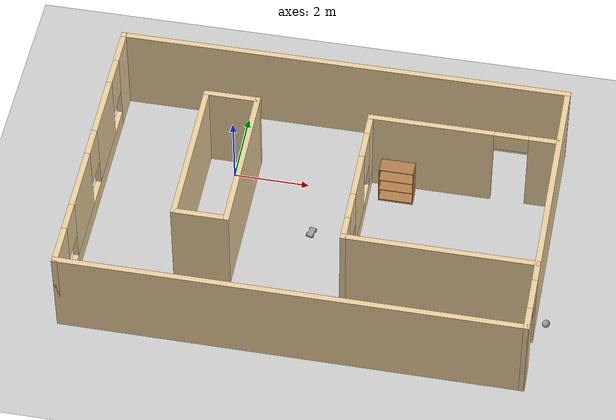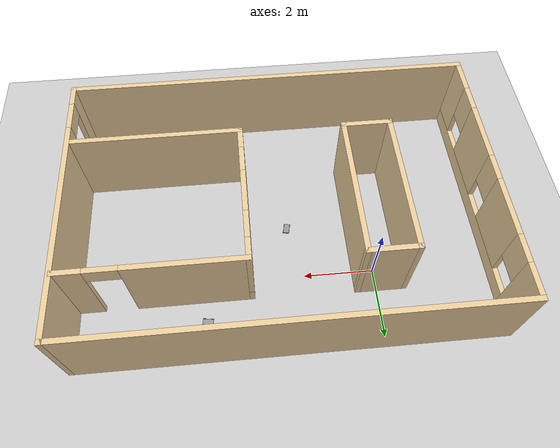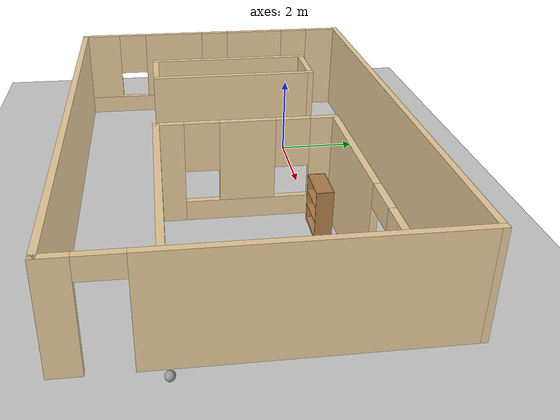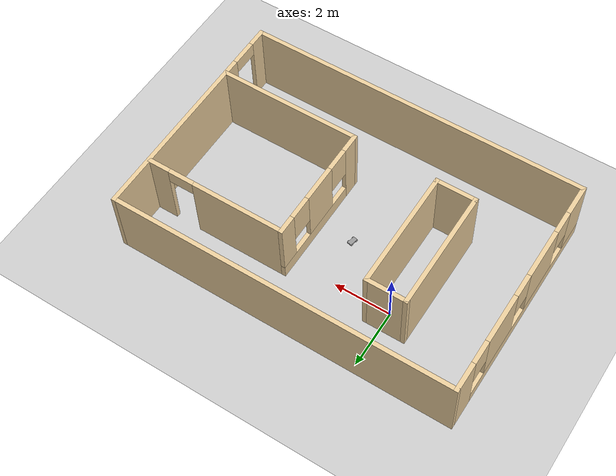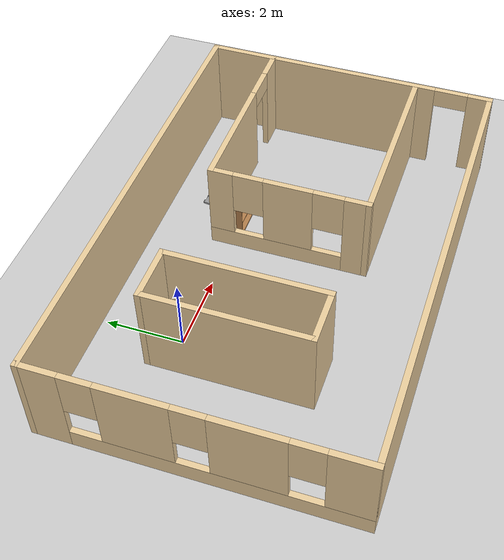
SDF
<sdf version="1.6">
 <world name="default">
  <model name="ground_plane">
   <static>1</static>
   <link name="link">
    <collision name="collision">
     <geometry><plane><normal>0 0 1</normal><size>100 100</size></plane></geometry>
     <surface><friction><ode><mu>100</mu><mu2>50</mu2></ode></friction></surface>
    </collision>
    <visual name="visual">
     <cast_shadows>0</cast_shadows>
     <geometry><plane><normal>0 0 1</normal><size>100 100</size></plane></geometry>
     <material>
      <script><uri>file://media/materials/scripts/gazebo.material</uri><name>Gazebo/Grey</name></script>
     </material>
    </visual>
   </link>
  </model>
  <model name="Shop_Floor">
   <pose>2.53883 -1.71757 0 0 -0 0</pose>
   <link name="Wall_0">
    <pose>-5.925 0 0 0 0 -1.5708</pose>
    <visual name="Wall_0_Visual_0">
     <pose>-3.48792 0 1.25 0 -0 0</pose>
     <geometry><box><size>1.02416 0.15 2.5</size></box></geometry>
     <material>
      <script><uri>file://media/materials/scripts/gazebo.material</uri><name>Gazebo/Grey</name></script>
      <ambient>0.921569 0.807843 0.615686 1</ambient>
     </material>
     <meta><layer>0</layer></meta>
    </visual>
    <collision name="Wall_0_Collision_0">
     <geometry><box><size>1.02416 0.15 2.5</size></box></geometry>
     <pose>-3.48792 0 1.25 0 -0 0</pose>
    </collision>
    <visual name="Wall_0_Visual_1">
     <pose>0.512079 0 0.25 0 -0 0</pose>
     <geometry><box><size>6.97584 0.15 0.5</size></box></geometry>
     <material>
      <script><uri>file://media/materials/scripts/gazebo.material</uri><name>Gazebo/Grey</name></script>
      <ambient>0.921569 0.807843 0.615686 1</ambient>
     </material>
     <meta><layer>0</layer></meta>
    </visual>
    <collision name="Wall_0_Collision_1">
     <geometry><box><size>6.97584 0.15 0.5</size></box></geometry>
     <pose>0.512079 0 0.25 0 -0 0</pose>
    </collision>
    <visual name="Wall_0_Visual_2">
     <pose>-1.31522 0 1.5 0 -0 0</pose>
     <geometry><box><size>1.72124 0.15 2</size></box></geometry>
     <material>
      <script><uri>file://media/materials/scripts/gazebo.material</uri><name>Gazebo/Grey</name></script>
      <ambient>0.921569 0.807843 0.615686 1</ambient>
     </material>
     <meta><layer>0</layer></meta>
    </visual>
    <collision name="Wall_0_Collision_2">
     <geometry><box><size>1.72124 0.15 2</size></box></geometry>
     <pose>-1.31522 0 1.5 0 -0 0</pose>
    </collision>
    <visual name="Wall_0_Visual_3">
     <pose>1.22048 0 1.5 0 -0 0</pose>
     <geometry><box><size>1.75017 0.15 2</size></box></geometry>
     <material>
      <script><uri>file://media/materials/scripts/gazebo.material</uri><name>Gazebo/Grey</name></script>
      <ambient>0.921569 0.807843 0.615686 1</ambient>
     </material>
     <meta><layer>0</layer></meta>
    </visual>
    <collision name="Wall_0_Collision_3">
     <geometry><box><size>1.75017 0.15 2</size></box></geometry>
     <pose>1.22048 0 1.5 0 -0 0</pose>
    </collision>
    <visual name="Wall_0_Visual_4">
     <pose>3.44778 0 1.5 0 -0 0</pose>
     <geometry><box><size>1.10444 0.15 2</size></box></geometry>
     <material>
      <script><uri>file://media/materials/scripts/gazebo.material</uri><name>Gazebo/Grey</name></script>
      <ambient>0.921569 0.807843 0.615686 1</ambient>
     </material>
     <meta><layer>0</layer></meta>
    </visual>
    <collision name="Wall_0_Collision_4">
     <geometry><box><size>1.10444 0.15 2</size></box></geometry>
     <pose>3.44778 0 1.5 0 -0 0</pose>
    </collision>
    <visual name="Wall_0_Visual_5">
     <pose>-2.57584 0 1.9 0 -0 0</pose>
     <geometry><box><size>0.8 0.15 1.2</size></box></geometry>
     <material>
      <script><uri>file://media/materials/scripts/gazebo.material</uri><name>Gazebo/Grey</name></script>
      <ambient>0.921569 0.807843 0.615686 1</ambient>
     </material>
     <meta><layer>0</layer></meta>
    </visual>
    <collision name="Wall_0_Collision_5">
     <geometry><box><size>0.8 0.15 1.2</size></box></geometry>
     <pose>-2.57584 0 1.9 0 -0 0</pose>
    </collision>
    <visual name="Wall_0_Visual_6">
     <pose>-0.054606 0 1.9 0 -0 0</pose>
     <geometry><box><size>0.8 0.15 1.2</size></box></geometry>
     <material>
      <script><uri>file://media/materials/scripts/gazebo.material</uri><name>Gazebo/Grey</name></script>
      <ambient>0.921569 0.807843 0.615686 1</ambient>
     </material>
     <meta><layer>0</layer></meta>
    </visual>
    <collision name="Wall_0_Collision_6">
     <geometry><box><size>0.8 0.15 1.2</size></box></geometry>
     <pose>-0.054606 0 1.9 0 -0 0</pose>
    </collision>
    <visual name="Wall_0_Visual_7">
     <pose>2.49556 0 1.9 0 -0 0</pose>
     <geometry><box><size>0.8 0.15 1.2</size></box></geometry>
     <material>
      <script><uri>file://media/materials/scripts/gazebo.material</uri><name>Gazebo/Grey</name></script>
      <ambient>0.921569 0.807843 0.615686 1</ambient>
     </material>
     <meta><layer>0</layer></meta>
    </visual>
    <collision name="Wall_0_Collision_7">
     <geometry><box><size>0.8 0.15 1.2</size></box></geometry>
     <pose>2.49556 0 1.9 0 -0 0</pose>
    </collision>
   </link>
   <link name="Wall_1">
    <collision name="Wall_1_Collision">
     <geometry><box><size>12 0.15 2.5</size></box></geometry>
     <pose>0 0 1.25 0 -0 0</pose>
    </collision>
    <visual name="Wall_1_Visual">
     <pose>0 0 1.25 0 -0 0</pose>
     <geometry><box><size>12 0.15 2.5</size></box></geometry>
     <material>
      <script><uri>file://media/materials/scripts/gazebo.material</uri><name>Gazebo/Grey</name></script>
      <ambient>0.921569 0.807843 0.615686 1</ambient>
     </material>
     <meta><layer>0</layer></meta>
    </visual>
    <pose>0 -3.925 0 0 -0 0</pose>
   </link>
   <link name="Wall_2">
    <pose>5.925 0 0 0 -0 1.5708</pose>
    <visual name="Wall_2_Visual_0">
     <pose>-3.66386 0 1.25 0 -0 0</pose>
     <geometry><box><size>0.672281 0.15 2.5</size></box></geometry>
     <material>
      <script><uri>file://media/materials/scripts/gazebo.material</uri><name>Gazebo/Grey</name></script>
      <ambient>0.921569 0.807843 0.615686 1</ambient>
     </material>
     <meta><layer>0</layer></meta>
    </visual>
    <collision name="Wall_2_Collision_0">
     <geometry><box><size>0.672281 0.15 2.5</size></box></geometry>
     <pose>-3.66386 0 1.25 0 -0 0</pose>
    </collision>
    <visual name="Wall_2_Visual_1">
     <pose>0.786141 0 1.25 0 -0 0</pose>
     <geometry><box><size>6.42772 0.15 2.5</size></box></geometry>
     <material>
      <script><uri>file://media/materials/scripts/gazebo.material</uri><name>Gazebo/Grey</name></script>
      <ambient>0.921569 0.807843 0.615686 1</ambient>
     </material>
     <meta><layer>0</layer></meta>
    </visual>
    <collision name="Wall_2_Collision_1">
     <geometry><box><size>6.42772 0.15 2.5</size></box></geometry>
     <pose>0.786141 0 1.25 0 -0 0</pose>
    </collision>
    <visual name="Wall_2_Visual_2">
     <pose>-2.87772 0 2.25 0 -0 0</pose>
     <geometry><box><size>0.9 0.15 0.5</size></box></geometry>
     <material>
      <script><uri>file://media/materials/scripts/gazebo.material</uri><name>Gazebo/Grey</name></script>
      <ambient>0.921569 0.807843 0.615686 1</ambient>
     </material>
     <meta><layer>0</layer></meta>
    </visual>
    <collision name="Wall_2_Collision_2">
     <geometry><box><size>0.9 0.15 0.5</size></box></geometry>
     <pose>-2.87772 0 2.25 0 -0 0</pose>
    </collision>
   </link>
   <link name="Wall_20">
    <collision name="Wall_20_Collision">
     <geometry><box><size>4.25 0.15 2.5</size></box></geometry>
     <pose>0 0 1.25 0 -0 0</pose>
    </collision>
    <visual name="Wall_20_Visual">
     <pose>0 0 1.25 0 -0 0</pose>
     <geometry><box><size>4.25 0.15 2.5</size></box></geometry>
     <material>
      <script><uri>file://media/materials/scripts/gazebo.material</uri><name>Gazebo/Grey</name></script>
      <ambient>0.921569 0.807843 0.615686 1</ambient>
     </material>
     <meta><layer>0</layer></meta>
    </visual>
    <pose>-1.99427 0.226904 0 0 -0 1.5708</pose>
   </link>
   <link name="Wall_21">
    <collision name="Wall_21_Collision">
     <geometry><box><size>1.5 0.15 2.5</size></box></geometry>
     <pose>0 0 1.25 0 -0 0</pose>
    </collision>
    <visual name="Wall_21_Visual">
     <pose>0 0 1.25 0 -0 0</pose>
     <geometry><box><size>1.5 0.15 2.5</size></box></geometry>
     <material>
      <script><uri>file://media/materials/scripts/gazebo.material</uri><name>Gazebo/Grey</name></script>
      <ambient>0.921569 0.807843 0.615686 1</ambient>
     </material>
     <meta><layer>0</layer></meta>
    </visual>
    <pose>-2.66927 2.2769 0 0 -0 3.14159</pose>
   </link>
   <link name="Wall_22">
    <collision name="Wall_22_Collision">
     <geometry><box><size>4.25 0.15 2.5</size></box></geometry>
     <pose>0 0 1.25 0 -0 0</pose>
    </collision>
    <visual name="Wall_22_Visual">
     <pose>0 0 1.25 0 -0 0</pose>
     <geometry><box><size>4.25 0.15 2.5</size></box></geometry>
     <material>
      <script><uri>file://media/materials/scripts/gazebo.material</uri><name>Gazebo/Grey</name></script>
      <ambient>0.921569 0.807843 0.615686 1</ambient>
     </material>
     <meta><layer>0</layer></meta>
    </visual>
    <pose>-3.34427 0.226904 0 0 0 -1.5708</pose>
   </link>
   <link name="Wall_23">
    <collision name="Wall_23_Collision">
     <geometry><box><size>1.5 0.15 2.5</size></box></geometry>
     <pose>0 0 1.25 0 -0 0</pose>
    </collision>
    <visual name="Wall_23_Visual">
     <pose>0 0 1.25 0 -0 0</pose>
     <geometry><box><size>1.5 0.15 2.5</size></box></geometry>
     <material>
      <script><uri>file://media/materials/scripts/gazebo.material</uri><name>Gazebo/Grey</name></script>
      <ambient>0.921569 0.807843 0.615686 1</ambient>
     </material>
     <meta><layer>0</layer></meta>
    </visual>
    <pose>-2.66927 -1.8231 0 0 -0 0</pose>
   </link>
   <link name="Wall_25">
    <collision name="Wall_25_Collision">
     <geometry><box><size>5.04563 0.15 2.5</size></box></geometry>
     <pose>0 0 1.25 0 -0 0</pose>
    </collision>
    <visual name="Wall_25_Visual">
     <pose>0 0 1.25 0 -0 0</pose>
     <geometry><box><size>5.04563 0.15 2.5</size></box></geometry>
     <material>
      <script><uri>file://media/materials/scripts/gazebo.material</uri><name>Gazebo/Grey</name></script>
      <ambient>0.921569 0.807843 0.615686 1</ambient>
     </material>
     <meta><layer>0</layer></meta>
    </visual>
    <pose>3.45851 -1.89064 0 0 -0 3.14159</pose>
   </link>
   <link name="Wall_28">
    <pose>1.0107 0.159355 0 0 -0 1.5708</pose>
    <visual name="Wall_28_Visual_0">
     <pose>-1.77536 0 1.25 0 -0 0</pose>
     <geometry><box><size>0.699283 0.15 2.5</size></box></geometry>
     <material>
      <script><uri>file://media/materials/scripts/gazebo.material</uri><name>Gazebo/Grey</name></script>
      <ambient>0.921569 0.807843 0.615686 1</ambient>
     </material>
     <meta><layer>0</layer></meta>
    </visual>
    <collision name="Wall_28_Collision_0">
     <geometry><box><size>0.699283 0.15 2.5</size></box></geometry>
     <pose>-1.77536 0 1.25 0 -0 0</pose>
    </collision>
    <visual name="Wall_28_Visual_1">
     <pose>0.349641 0 0.25 0 -0 0</pose>
     <geometry><box><size>3.55072 0.15 0.5</size></box></geometry>
     <material>
      <script><uri>file://media/materials/scripts/gazebo.material</uri><name>Gazebo/Grey</name></script>
      <ambient>0.921569 0.807843 0.615686 1</ambient>
     </material>
     <meta><layer>0</layer></meta>
    </visual>
    <collision name="Wall_28_Collision_1">
     <geometry><box><size>3.55072 0.15 0.5</size></box></geometry>
     <pose>0.349641 0 0.25 0 -0 0</pose>
    </collision>
    <visual name="Wall_28_Visual_2">
     <pose>0.020189 0 1.5 0 -0 0</pose>
     <geometry><box><size>1.29181 0.15 2</size></box></geometry>
     <material>
      <script><uri>file://media/materials/scripts/gazebo.material</uri><name>Gazebo/Grey</name></script>
      <ambient>0.921569 0.807843 0.615686 1</ambient>
     </material>
     <meta><layer>0</layer></meta>
    </visual>
    <collision name="Wall_28_Collision_2">
     <geometry><box><size>1.29181 0.15 2</size></box></geometry>
     <pose>0.020189 0 1.5 0 -0 0</pose>
    </collision>
    <visual name="Wall_28_Visual_3">
     <pose>1.79555 0 1.5 0 -0 0</pose>
     <geometry><box><size>0.658906 0.15 2</size></box></geometry>
     <material>
      <script><uri>file://media/materials/scripts/gazebo.material</uri><name>Gazebo/Grey</name></script>
      <ambient>0.921569 0.807843 0.615686 1</ambient>
     </material>
     <meta><layer>0</layer></meta>
    </visual>
    <collision name="Wall_28_Collision_3">
     <geometry><box><size>0.658906 0.15 2</size></box></geometry>
     <pose>1.79555 0 1.5 0 -0 0</pose>
    </collision>
    <visual name="Wall_28_Visual_4">
     <pose>-1.02572 0 1.9 0 -0 0</pose>
     <geometry><box><size>0.8 0.15 1.2</size></box></geometry>
     <material>
      <script><uri>file://media/materials/scripts/gazebo.material</uri><name>Gazebo/Grey</name></script>
      <ambient>0.921569 0.807843 0.615686 1</ambient>
     </material>
     <meta><layer>0</layer></meta>
    </visual>
    <collision name="Wall_28_Collision_4">
     <geometry><box><size>0.8 0.15 1.2</size></box></geometry>
     <pose>-1.02572 0 1.9 0 -0 0</pose>
    </collision>
    <visual name="Wall_28_Visual_5">
     <pose>1.06609 0 1.9 0 -0 0</pose>
     <geometry><box><size>0.8 0.15 1.2</size></box></geometry>
     <material>
      <script><uri>file://media/materials/scripts/gazebo.material</uri><name>Gazebo/Grey</name></script>
      <ambient>0.921569 0.807843 0.615686 1</ambient>
     </material>
     <meta><layer>0</layer></meta>
    </visual>
    <collision name="Wall_28_Collision_5">
     <geometry><box><size>0.8 0.15 1.2</size></box></geometry>
     <pose>1.06609 0 1.9 0 -0 0</pose>
    </collision>
   </link>
   <link name="Wall_29">
    <pose>3.4357 2.20935 0 0 -0 0</pose>
    <visual name="Wall_29_Visual_0">
     <pose>-0.847857 0 1.25 0 -0 0</pose>
     <geometry><box><size>3.30429 0.15 2.5</size></box></geometry>
     <material>
      <script><uri>file://media/materials/scripts/gazebo.material</uri><name>Gazebo/Grey</name></script>
      <ambient>0.921569 0.807843 0.615686 1</ambient>
     </material>
     <meta><layer>0</layer></meta>
    </visual>
    <collision name="Wall_29_Collision_0">
     <geometry><box><size>3.30429 0.15 2.5</size></box></geometry>
     <pose>-0.847857 0 1.25 0 -0 0</pose>
    </collision>
    <visual name="Wall_29_Visual_1">
     <pose>2.10214 0 1.25 0 -0 0</pose>
     <geometry><box><size>0.795714 0.15 2.5</size></box></geometry>
     <material>
      <script><uri>file://media/materials/scripts/gazebo.material</uri><name>Gazebo/Grey</name></script>
      <ambient>0.921569 0.807843 0.615686 1</ambient>
     </material>
     <meta><layer>0</layer></meta>
    </visual>
    <collision name="Wall_29_Collision_1">
     <geometry><box><size>0.795714 0.15 2.5</size></box></geometry>
     <pose>2.10214 0 1.25 0 -0 0</pose>
    </collision>
    <visual name="Wall_29_Visual_2">
     <pose>1.25429 0 2.25 0 -0 0</pose>
     <geometry><box><size>0.9 0.15 0.5</size></box></geometry>
     <material>
      <script><uri>file://media/materials/scripts/gazebo.material</uri><name>Gazebo/Grey</name></script>
      <ambient>0.921569 0.807843 0.615686 1</ambient>
     </material>
     <meta><layer>0</layer></meta>
    </visual>
    <collision name="Wall_29_Collision_2">
     <geometry><box><size>0.9 0.15 0.5</size></box></geometry>
     <pose>1.25429 0 2.25 0 -0 0</pose>
    </collision>
   </link>
   <link name="Wall_3">
    <collision name="Wall_3_Collision">
     <geometry><box><size>12 0.15 2.5</size></box></geometry>
     <pose>0 0 1.25 0 -0 0</pose>
    </collision>
    <visual name="Wall_3_Visual">
     <pose>0 0 1.25 0 -0 0</pose>
     <geometry><box><size>12 0.15 2.5</size></box></geometry>
     <material>
      <script><uri>file://media/materials/scripts/gazebo.material</uri><name>Gazebo/Grey</name></script>
      <ambient>0.921569 0.807843 0.615686 1</ambient>
     </material>
     <meta><layer>0</layer></meta>
    </visual>
    <pose>0 3.925 0 0 -0 3.14159</pose>
   </link>
   <static>1</static>
  </model>
  <model name="Robosweeper_clone">
   <link name="link_0">
    <pose>-0 0 0 0 0.05 0</pose>
    <inertial>
     <mass>1</mass>
     <inertia>
      <ixx>0.166667</ixx>
      <ixy>0</ixy>
      <ixz>0</ixz>
      <iyy>0.166667</iyy>
      <iyz>0</iyz>
      <izz>0.166667</izz>
     </inertia>
    </inertial>
    <visual name="visual">
     <geometry><box><size>0.3 0.16 0.05</size></box></geometry>
     <material>
      <lighting>1</lighting>
      <script><uri>file://media/materials/scripts/gazebo.material</uri><name>Gazebo/Grey</name></script>
      <ambient>0.3 0.3 0.3 1</ambient>
      <diffuse>0.7 0.7 0.7 1</diffuse>
      <specular>0.01 0.01 0.01 1</specular>
      <emissive>0 0 0 1</emissive>
      <shader type="vertex"><normal_map>__default__</normal_map></shader>
     </material>
    </visual>
    <collision name="collision">
     <geometry><box><size>0.3 0.16 0.05</size></box></geometry>
     <surface>
      <friction>
       <ode><mu>1</mu><mu2>1</mu2><fdir1>0 0 0</fdir1><slip1>0</slip1><slip2>0</slip2></ode>
       <torsional>
        <coefficient>1</coefficient>
        <patch_radius>0</patch_radius>
        <surface_radius>0</surface_radius>
        <use_patch_radius>1</use_patch_radius>
        <ode><slip>0</slip></ode>
       </torsional>
      </friction>
      <bounce><restitution_coefficient>0</restitution_coefficient><threshold>1e+06</threshold></bounce>
      <contact>
       <collide_without_contact>0</collide_without_contact>
       <collide_without_contact_bitmask>1</collide_without_contact_bitmask>
       <collide_bitmask>1</collide_bitmask>
       <ode>
        <soft_cfm>0</soft_cfm>
        <soft_erp>0.2</soft_erp>
        <kp>1e+13</kp>
        <kd>1</kd>
        <max_vel>0.01</max_vel>
        <min_depth>0</min_depth>
       </ode>
       <bullet>
        <split_impulse>1</split_impulse>
        <split_impulse_penetration_threshold>-0.01</split_impulse_penetration_threshold>
        <soft_cfm>0</soft_cfm>
        <soft_erp>0.2</soft_erp>
        <kp>1e+13</kp>
        <kd>1</kd>
       </bullet>
      </contact>
     </surface>
    </collision>
   </link>
   <link name="link_1">
    <pose>-0.1 0.086203 0 1.5707 -0 0</pose>
    <inertial>
     <mass>1</mass>
     <inertia><ixx>0.145833</ixx><ixy>0</ixy><ixz>0</ixz><iyy>0.145833</iyy><iyz>0</iyz><izz>0.125</izz></inertia>
    </inertial>
    <visual name="visual">
     <geometry><cylinder><radius>0.05</radius><length>0.0125</length></cylinder></geometry>
     <material>
      <lighting>1</lighting>
      <script><uri>file://media/materials/scripts/gazebo.material</uri><name>Gazebo/Grey</name></script>
      <ambient>0.3 0.3 0.3 1</ambient>
      <diffuse>0.7 0.7 0.7 1</diffuse>
      <specular>0.01 0.01 0.01 1</specular>
      <emissive>0 0 0 1</emissive>
      <shader type="vertex"><normal_map>__default__</normal_map></shader>
     </material>
    </visual>
    <collision name="collision">
     <geometry><cylinder><radius>0.05</radius><length>0.0125</length></cylinder></geometry>
     <surface>
      <friction>
       <ode><mu>1</mu><mu2>1</mu2><fdir1>0 0 0</fdir1><slip1>0</slip1><slip2>0</slip2></ode>
       <torsional>
        <coefficient>1</coefficient>
        <patch_radius>0</patch_radius>
        <surface_radius>0</surface_radius>
        <use_patch_radius>1</use_patch_radius>
        <ode><slip>0</slip></ode>
       </torsional>
      </friction>
      <bounce><restitution_coefficient>0</restitution_coefficient><threshold>1e+06</threshold></bounce>
      <contact>
       <collide_without_contact>0</collide_without_contact>
       <collide_without_contact_bitmask>1</collide_without_contact_bitmask>
       <collide_bitmask>1</collide_bitmask>
       <ode>
        <soft_cfm>0</soft_cfm>
        <soft_erp>0.2</soft_erp>
        <kp>1e+13</kp>
        <kd>1</kd>
        <max_vel>0.01</max_vel>
        <min_depth>0</min_depth>
       </ode>
       <bullet>
        <split_impulse>1</split_impulse>
        <split_impulse_penetration_threshold>-0.01</split_impulse_penetration_threshold>
        <soft_cfm>0</soft_cfm>
        <soft_erp>0.2</soft_erp>
        <kp>1e+13</kp>
        <kd>1</kd>
       </bullet>
      </contact>
     </surface>
    </collision>
   </link>
   <link name="link_1_clone">
    <pose>0.1 0.086203 0 1.5707 -0 0</pose>
    <inertial>
     <mass>1</mass>
     <inertia><ixx>0.145833</ixx><ixy>0</ixy><ixz>0</ixz><iyy>0.145833</iyy><iyz>0</iyz><izz>0.125</izz></inertia>
    </inertial>
    <visual name="visual">
     <geometry><cylinder><radius>0.05</radius><length>0.0125</length></cylinder></geometry>
     <material>
      <lighting>1</lighting>
      <script><uri>file://media/materials/scripts/gazebo.material</uri><name>Gazebo/Grey</name></script>
      <ambient>0.3 0.3 0.3 1</ambient>
      <diffuse>0.7 0.7 0.7 1</diffuse>
      <specular>0.01 0.01 0.01 1</specular>
      <emissive>0 0 0 1</emissive>
      <shader type="vertex"><normal_map>__default__</normal_map></shader>
     </material>
    </visual>
    <collision name="collision">
     <geometry><cylinder><radius>0.05</radius><length>0.0125</length></cylinder></geometry>
     <surface>
      <friction>
       <ode><mu>1</mu><mu2>1</mu2><fdir1>0 0 0</fdir1><slip1>0</slip1><slip2>0</slip2></ode>
       <torsional>
        <coefficient>1</coefficient>
        <patch_radius>0</patch_radius>
        <surface_radius>0</surface_radius>
        <use_patch_radius>1</use_patch_radius>
        <ode><slip>0</slip></ode>
       </torsional>
      </friction>
      <bounce><restitution_coefficient>0</restitution_coefficient><threshold>1e+06</threshold></bounce>
      <contact>
       <collide_without_contact>0</collide_without_contact>
       <collide_without_contact_bitmask>1</collide_without_contact_bitmask>
       <collide_bitmask>1</collide_bitmask>
       <ode>
        <soft_cfm>0</soft_cfm>
        <soft_erp>0.2</soft_erp>
        <kp>1e+13</kp>
        <kd>1</kd>
        <max_vel>0.01</max_vel>
        <min_depth>0</min_depth>
       </ode>
       <bullet>
        <split_impulse>1</split_impulse>
        <split_impulse_penetration_threshold>-0.01</split_impulse_penetration_threshold>
        <soft_cfm>0</soft_cfm>
        <soft_erp>0.2</soft_erp>
        <kp>1e+13</kp>
        <kd>1</kd>
       </bullet>
      </contact>
     </surface>
    </collision>
   </link>
   <link name="link_1_clone_0">
    <pose>-0.1 -0.086297 0 1.5707 -0 0</pose>
    <inertial>
     <mass>1</mass>
     <inertia><ixx>0.145833</ixx><ixy>0</ixy><ixz>0</ixz><iyy>0.145833</iyy><iyz>0</iyz><izz>0.125</izz></inertia>
    </inertial>
    <visual name="visual">
     <geometry><cylinder><radius>0.05</radius><length>0.0125</length></cylinder></geometry>
     <material>
      <lighting>1</lighting>
      <script><uri>file://media/materials/scripts/gazebo.material</uri><name>Gazebo/Grey</name></script>
      <ambient>0.3 0.3 0.3 1</ambient>
      <diffuse>0.7 0.7 0.7 1</diffuse>
      <specular>0.01 0.01 0.01 1</specular>
      <emissive>0 0 0 1</emissive>
      <shader type="vertex"><normal_map>__default__</normal_map></shader>
     </material>
    </visual>
    <collision name="collision">
     <geometry><cylinder><radius>0.05</radius><length>0.0125</length></cylinder></geometry>
     <surface>
      <friction>
       <ode><mu>1</mu><mu2>1</mu2><fdir1>0 0 0</fdir1><slip1>0</slip1><slip2>0</slip2></ode>
       <torsional>
        <coefficient>1</coefficient>
        <patch_radius>0</patch_radius>
        <surface_radius>0</surface_radius>
        <use_patch_radius>1</use_patch_radius>
        <ode><slip>0</slip></ode>
       </torsional>
      </friction>
      <bounce><restitution_coefficient>0</restitution_coefficient><threshold>1e+06</threshold></bounce>
      <contact>
       <collide_without_contact>0</collide_without_contact>
       <collide_without_contact_bitmask>1</collide_without_contact_bitmask>
       <collide_bitmask>1</collide_bitmask>
       <ode>
        <soft_cfm>0</soft_cfm>
        <soft_erp>0.2</soft_erp>
        <kp>1e+13</kp>
        <kd>1</kd>
        <max_vel>0.01</max_vel>
        <min_depth>0</min_depth>
       </ode>
       <bullet>
        <split_impulse>1</split_impulse>
        <split_impulse_penetration_threshold>-0.01</split_impulse_penetration_threshold>
        <soft_cfm>0</soft_cfm>
        <soft_erp>0.2</soft_erp>
        <kp>1e+13</kp>
        <kd>1</kd>
       </bullet>
      </contact>
     </surface>
    </collision>
   </link>
   <link name="link_1_clone_1">
    <pose>0.1 -0.086297 0 1.5707 -0 0</pose>
    <inertial>
     <mass>1</mass>
     <inertia><ixx>0.145833</ixx><ixy>0</ixy><ixz>0</ixz><iyy>0.145833</iyy><iyz>0</iyz><izz>0.125</izz></inertia>
    </inertial>
    <visual name="visual">
     <geometry><cylinder><radius>0.05</radius><length>0.0125</length></cylinder></geometry>
     <material>
      <lighting>1</lighting>
      <script><uri>file://media/materials/scripts/gazebo.material</uri><name>Gazebo/Grey</name></script>
      <ambient>0.3 0.3 0.3 1</ambient>
      <diffuse>0.7 0.7 0.7 1</diffuse>
      <specular>0.01 0.01 0.01 1</specular>
      <emissive>0 0 0 1</emissive>
      <shader type="vertex"><normal_map>__default__</normal_map></shader>
     </material>
    </visual>
    <collision name="collision">
     <geometry><cylinder><radius>0.05</radius><length>0.0125</length></cylinder></geometry>
     <surface>
      <friction>
       <ode><mu>1</mu><mu2>1</mu2><fdir1>0 0 0</fdir1><slip1>0</slip1><slip2>0</slip2></ode>
       <torsional>
        <coefficient>1</coefficient>
        <patch_radius>0</patch_radius>
        <surface_radius>0</surface_radius>
        <use_patch_radius>1</use_patch_radius>
        <ode><slip>0</slip></ode>
       </torsional>
      </friction>
      <bounce><restitution_coefficient>0</restitution_coefficient><threshold>1e+06</threshold></bounce>
      <contact>
       <collide_without_contact>0</collide_without_contact>
       <collide_without_contact_bitmask>1</collide_without_contact_bitmask>
       <collide_bitmask>1</collide_bitmask>
       <ode>
        <soft_cfm>0</soft_cfm>
        <soft_erp>0.2</soft_erp>
        <kp>1e+13</kp>
        <kd>1</kd>
        <max_vel>0.01</max_vel>
        <min_depth>0</min_depth>
       </ode>
       <bullet>
        <split_impulse>1</split_impulse>
        <split_impulse_penetration_threshold>-0.01</split_impulse_penetration_threshold>
        <soft_cfm>0</soft_cfm>
        <soft_erp>0.2</soft_erp>
        <kp>1e+13</kp>
        <kd>1</kd>
       </bullet>
      </contact>
     </surface>
    </collision>
   </link>
   <joint name="link_0_JOINT_0" type="revolute">
    <parent>link_0</parent>
    <child>link_1</child>
    <axis>
     <xyz>0 0 1</xyz>
     <use_parent_model_frame>0</use_parent_model_frame>
     <limit>
      <lower>-1.79769e+308</lower>
      <upper>1.79769e+308</upper>
      <effort>-1</effort>
      <velocity>-1</velocity>
     </limit>
     <dynamics>
      <spring_reference>0</spring_reference>
      <spring_stiffness>0</spring_stiffness>
      <damping>0</damping>
     </dynamics>
    </axis>
    <physics>
     <ode><limit><cfm>0</cfm><erp>0.2</erp></limit><suspension><cfm>0</cfm><erp>0.2</erp></suspension></ode>
    </physics>
   </joint>
   <joint name="link_0_JOINT_1" type="revolute">
    <parent>link_0</parent>
    <child>link_1_clone</child>
    <axis>
     <xyz>0 0 1</xyz>
     <use_parent_model_frame>0</use_parent_model_frame>
     <limit>
      <lower>-1.79769e+308</lower>
      <upper>1.79769e+308</upper>
      <effort>-1</effort>
      <velocity>-1</velocity>
     </limit>
     <dynamics>
      <spring_reference>0</spring_reference>
      <spring_stiffness>0</spring_stiffness>
      <damping>0</damping>
     </dynamics>
    </axis>
    <physics>
     <ode><limit><cfm>0</cfm><erp>0.2</erp></limit><suspension><cfm>0</cfm><erp>0.2</erp></suspension></ode>
    </physics>
   </joint>
   <joint name="link_0_JOINT_2" type="revolute">
    <parent>link_0</parent>
    <child>link_1_clone_0</child>
    <axis>
     <xyz>0 0 1</xyz>
     <use_parent_model_frame>0</use_parent_model_frame>
     <limit>
      <lower>-1.79769e+308</lower>
      <upper>1.79769e+308</upper>
      <effort>-1</effort>
      <velocity>-1</velocity>
     </limit>
     <dynamics>
      <spring_reference>0</spring_reference>
      <spring_stiffness>0</spring_stiffness>
      <damping>0</damping>
     </dynamics>
    </axis>
    <physics>
     <ode><limit><cfm>0</cfm><erp>0.2</erp></limit><suspension><cfm>0</cfm><erp>0.2</erp></suspension></ode>
    </physics>
   </joint>
   <joint name="link_0_JOINT_3" type="revolute">
    <parent>link_0</parent>
    <child>link_1_clone_1</child>
    <axis>
     <xyz>0 0 1</xyz>
     <use_parent_model_frame>0</use_parent_model_frame>
     <limit>
      <lower>-1.79769e+308</lower>
      <upper>1.79769e+308</upper>
      <effort>-1</effort>
      <velocity>-1</velocity>
     </limit>
     <dynamics>
      <spring_reference>0</spring_reference>
      <spring_stiffness>0</spring_stiffness>
      <damping>0</damping>
     </dynamics>
    </axis>
    <physics>
     <ode><limit><cfm>0</cfm><erp>0.2</erp></limit><suspension><cfm>0</cfm><erp>0.2</erp></suspension></ode>
    </physics>
   </joint>
   <static>0</static>
   <pose>2.36867 -1.61146 0.050002 -3e-06 -8e-06 -1.79502</pose>
  </model>
  <model name="Robosweeper_0_clone_0">
   <link name="link_0">
    <pose>-0 0 0 0 0.05 0</pose>
    <inertial>
     <mass>1</mass>
     <inertia>
      <ixx>0.166667</ixx>
      <ixy>0</ixy>
      <ixz>0</ixz>
      <iyy>0.166667</iyy>
      <iyz>0</iyz>
      <izz>0.166667</izz>
     </inertia>
    </inertial>
    <visual name="visual">
     <geometry><box><size>0.3 0.16 0.05</size></box></geometry>
     <material>
      <lighting>1</lighting>
      <script><uri>file://media/materials/scripts/gazebo.material</uri><name>Gazebo/Grey</name></script>
      <ambient>0.3 0.3 0.3 1</ambient>
      <diffuse>0.7 0.7 0.7 1</diffuse>
      <specular>0.01 0.01 0.01 1</specular>
      <emissive>0 0 0 1</emissive>
      <shader type="vertex"><normal_map>__default__</normal_map></shader>
     </material>
    </visual>
    <collision name="collision">
     <geometry><box><size>0.3 0.16 0.05</size></box></geometry>
     <surface>
      <friction>
       <ode><mu>1</mu><mu2>1</mu2><fdir1>0 0 0</fdir1><slip1>0</slip1><slip2>0</slip2></ode>
       <torsional>
        <coefficient>1</coefficient>
        <patch_radius>0</patch_radius>
        <surface_radius>0</surface_radius>
        <use_patch_radius>1</use_patch_radius>
        <ode><slip>0</slip></ode>
       </torsional>
      </friction>
      <bounce><restitution_coefficient>0</restitution_coefficient><threshold>1e+06</threshold></bounce>
      <contact>
       <collide_without_contact>0</collide_without_contact>
       <collide_without_contact_bitmask>1</collide_without_contact_bitmask>
       <collide_bitmask>1</collide_bitmask>
       <ode>
        <soft_cfm>0</soft_cfm>
        <soft_erp>0.2</soft_erp>
        <kp>1e+13</kp>
        <kd>1</kd>
        <max_vel>0.01</max_vel>
        <min_depth>0</min_depth>
       </ode>
       <bullet>
        <split_impulse>1</split_impulse>
        <split_impulse_penetration_threshold>-0.01</split_impulse_penetration_threshold>
        <soft_cfm>0</soft_cfm>
        <soft_erp>0.2</soft_erp>
        <kp>1e+13</kp>
        <kd>1</kd>
       </bullet>
      </contact>
     </surface>
    </collision>
   </link>
   <link name="link_1">
    <pose>-0.1 0.086203 0 1.5707 -0 0</pose>
    <inertial>
     <mass>1</mass>
     <inertia><ixx>0.145833</ixx><ixy>0</ixy><ixz>0</ixz><iyy>0.145833</iyy><iyz>0</iyz><izz>0.125</izz></inertia>
    </inertial>
    <visual name="visual">
     <geometry><cylinder><radius>0.05</radius><length>0.0125</length></cylinder></geometry>
     <material>
      <lighting>1</lighting>
      <script><uri>file://media/materials/scripts/gazebo.material</uri><name>Gazebo/Grey</name></script>
      <ambient>0.3 0.3 0.3 1</ambient>
      <diffuse>0.7 0.7 0.7 1</diffuse>
      <specular>0.01 0.01 0.01 1</specular>
      <emissive>0 0 0 1</emissive>
      <shader type="vertex"><normal_map>__default__</normal_map></shader>
     </material>
    </visual>
    <collision name="collision">
     <geometry><cylinder><radius>0.05</radius><length>0.0125</length></cylinder></geometry>
     <surface>
      <friction>
       <ode><mu>1</mu><mu2>1</mu2><fdir1>0 0 0</fdir1><slip1>0</slip1><slip2>0</slip2></ode>
       <torsional>
        <coefficient>1</coefficient>
        <patch_radius>0</patch_radius>
        <surface_radius>0</surface_radius>
        <use_patch_radius>1</use_patch_radius>
        <ode><slip>0</slip></ode>
       </torsional>
      </friction>
      <bounce><restitution_coefficient>0</restitution_coefficient><threshold>1e+06</threshold></bounce>
      <contact>
       <collide_without_contact>0</collide_without_contact>
       <collide_without_contact_bitmask>1</collide_without_contact_bitmask>
       <collide_bitmask>1</collide_bitmask>
       <ode>
        <soft_cfm>0</soft_cfm>
        <soft_erp>0.2</soft_erp>
        <kp>1e+13</kp>
        <kd>1</kd>
        <max_vel>0.01</max_vel>
        <min_depth>0</min_depth>
       </ode>
       <bullet>
        <split_impulse>1</split_impulse>
        <split_impulse_penetration_threshold>-0.01</split_impulse_penetration_threshold>
        <soft_cfm>0</soft_cfm>
        <soft_erp>0.2</soft_erp>
        <kp>1e+13</kp>
        <kd>1</kd>
       </bullet>
      </contact>
     </surface>
    </collision>
   </link>
   <link name="link_1_clone">
    <pose>0.1 0.086203 0 1.5707 -0 0</pose>
    <inertial>
     <mass>1</mass>
     <inertia><ixx>0.145833</ixx><ixy>0</ixy><ixz>0</ixz><iyy>0.145833</iyy><iyz>0</iyz><izz>0.125</izz></inertia>
    </inertial>
    <visual name="visual">
     <geometry><cylinder><radius>0.05</radius><length>0.0125</length></cylinder></geometry>
     <material>
      <lighting>1</lighting>
      <script><uri>file://media/materials/scripts/gazebo.material</uri><name>Gazebo/Grey</name></script>
      <ambient>0.3 0.3 0.3 1</ambient>
      <diffuse>0.7 0.7 0.7 1</diffuse>
      <specular>0.01 0.01 0.01 1</specular>
      <emissive>0 0 0 1</emissive>
      <shader type="vertex"><normal_map>__default__</normal_map></shader>
     </material>
    </visual>
    <collision name="collision">
     <geometry><cylinder><radius>0.05</radius><length>0.0125</length></cylinder></geometry>
     <surface>
      <friction>
       <ode><mu>1</mu><mu2>1</mu2><fdir1>0 0 0</fdir1><slip1>0</slip1><slip2>0</slip2></ode>
       <torsional>
        <coefficient>1</coefficient>
        <patch_radius>0</patch_radius>
        <surface_radius>0</surface_radius>
        <use_patch_radius>1</use_patch_radius>
        <ode><slip>0</slip></ode>
       </torsional>
      </friction>
      <bounce><restitution_coefficient>0</restitution_coefficient><threshold>1e+06</threshold></bounce>
      <contact>
       <collide_without_contact>0</collide_without_contact>
       <collide_without_contact_bitmask>1</collide_without_contact_bitmask>
       <collide_bitmask>1</collide_bitmask>
       <ode>
        <soft_cfm>0</soft_cfm>
        <soft_erp>0.2</soft_erp>
        <kp>1e+13</kp>
        <kd>1</kd>
        <max_vel>0.01</max_vel>
        <min_depth>0</min_depth>
       </ode>
       <bullet>
        <split_impulse>1</split_impulse>
        <split_impulse_penetration_threshold>-0.01</split_impulse_penetration_threshold>
        <soft_cfm>0</soft_cfm>
        <soft_erp>0.2</soft_erp>
        <kp>1e+13</kp>
        <kd>1</kd>
       </bullet>
      </contact>
     </surface>
    </collision>
   </link>
   <link name="link_1_clone_0">
    <pose>-0.1 -0.086297 0 1.5707 -0 0</pose>
    <inertial>
     <mass>1</mass>
     <inertia><ixx>0.145833</ixx><ixy>0</ixy><ixz>0</ixz><iyy>0.145833</iyy><iyz>0</iyz><izz>0.125</izz></inertia>
    </inertial>
    <visual name="visual">
     <geometry><cylinder><radius>0.05</radius><length>0.0125</length></cylinder></geometry>
     <material>
      <lighting>1</lighting>
      <script><uri>file://media/materials/scripts/gazebo.material</uri><name>Gazebo/Grey</name></script>
      <ambient>0.3 0.3 0.3 1</ambient>
      <diffuse>0.7 0.7 0.7 1</diffuse>
      <specular>0.01 0.01 0.01 1</specular>
      <emissive>0 0 0 1</emissive>
      <shader type="vertex"><normal_map>__default__</normal_map></shader>
     </material>
    </visual>
    <collision name="collision">
     <geometry><cylinder><radius>0.05</radius><length>0.0125</length></cylinder></geometry>
     <surface>
      <friction>
       <ode><mu>1</mu><mu2>1</mu2><fdir1>0 0 0</fdir1><slip1>0</slip1><slip2>0</slip2></ode>
       <torsional>
        <coefficient>1</coefficient>
        <patch_radius>0</patch_radius>
        <surface_radius>0</surface_radius>
        <use_patch_radius>1</use_patch_radius>
        <ode><slip>0</slip></ode>
       </torsional>
      </friction>
      <bounce><restitution_coefficient>0</restitution_coefficient><threshold>1e+06</threshold></bounce>
      <contact>
       <collide_without_contact>0</collide_without_contact>
       <collide_without_contact_bitmask>1</collide_without_contact_bitmask>
       <collide_bitmask>1</collide_bitmask>
       <ode>
        <soft_cfm>0</soft_cfm>
        <soft_erp>0.2</soft_erp>
        <kp>1e+13</kp>
        <kd>1</kd>
        <max_vel>0.01</max_vel>
        <min_depth>0</min_depth>
       </ode>
       <bullet>
        <split_impulse>1</split_impulse>
        <split_impulse_penetration_threshold>-0.01</split_impulse_penetration_threshold>
        <soft_cfm>0</soft_cfm>
        <soft_erp>0.2</soft_erp>
        <kp>1e+13</kp>
        <kd>1</kd>
       </bullet>
      </contact>
     </surface>
    </collision>
   </link>
   <link name="link_1_clone_1">
    <pose>0.1 -0.086297 0 1.5707 -0 0</pose>
    <inertial>
     <mass>1</mass>
     <inertia><ixx>0.145833</ixx><ixy>0</ixy><ixz>0</ixz><iyy>0.145833</iyy><iyz>0</iyz><izz>0.125</izz></inertia>
    </inertial>
    <visual name="visual">
     <geometry><cylinder><radius>0.05</radius><length>0.0125</length></cylinder></geometry>
     <material>
      <lighting>1</lighting>
      <script><uri>file://media/materials/scripts/gazebo.material</uri><name>Gazebo/Grey</name></script>
      <ambient>0.3 0.3 0.3 1</ambient>
      <diffuse>0.7 0.7 0.7 1</diffuse>
      <specular>0.01 0.01 0.01 1</specular>
      <emissive>0 0 0 1</emissive>
      <shader type="vertex"><normal_map>__default__</normal_map></shader>
     </material>
    </visual>
    <collision name="collision">
     <geometry><cylinder><radius>0.05</radius><length>0.0125</length></cylinder></geometry>
     <surface>
      <friction>
       <ode><mu>1</mu><mu2>1</mu2><fdir1>0 0 0</fdir1><slip1>0</slip1><slip2>0</slip2></ode>
       <torsional>
        <coefficient>1</coefficient>
        <patch_radius>0</patch_radius>
        <surface_radius>0</surface_radius>
        <use_patch_radius>1</use_patch_radius>
        <ode><slip>0</slip></ode>
       </torsional>
      </friction>
      <bounce><restitution_coefficient>0</restitution_coefficient><threshold>1e+06</threshold></bounce>
      <contact>
       <collide_without_contact>0</collide_without_contact>
       <collide_without_contact_bitmask>1</collide_without_contact_bitmask>
       <collide_bitmask>1</collide_bitmask>
       <ode>
        <soft_cfm>0</soft_cfm>
        <soft_erp>0.2</soft_erp>
        <kp>1e+13</kp>
        <kd>1</kd>
        <max_vel>0.01</max_vel>
        <min_depth>0</min_depth>
       </ode>
       <bullet>
        <split_impulse>1</split_impulse>
        <split_impulse_penetration_threshold>-0.01</split_impulse_penetration_threshold>
        <soft_cfm>0</soft_cfm>
        <soft_erp>0.2</soft_erp>
        <kp>1e+13</kp>
        <kd>1</kd>
       </bullet>
      </contact>
     </surface>
    </collision>
   </link>
   <joint name="link_0_JOINT_0" type="revolute">
    <parent>link_0</parent>
    <child>link_1</child>
    <axis>
     <xyz>0 0 1</xyz>
     <use_parent_model_frame>0</use_parent_model_frame>
     <limit>
      <lower>-1.79769e+308</lower>
      <upper>1.79769e+308</upper>
      <effort>-1</effort>
      <velocity>-1</velocity>
     </limit>
     <dynamics>
      <spring_reference>0</spring_reference>
      <spring_stiffness>0</spring_stiffness>
      <damping>0</damping>
     </dynamics>
    </axis>
    <physics>
     <ode><limit><cfm>0</cfm><erp>0.2</erp></limit><suspension><cfm>0</cfm><erp>0.2</erp></suspension></ode>
    </physics>
   </joint>
   <joint name="link_0_JOINT_1" type="revolute">
    <parent>link_0</parent>
    <child>link_1_clone</child>
    <axis>
     <xyz>0 0 1</xyz>
     <use_parent_model_frame>0</use_parent_model_frame>
     <limit>
      <lower>-1.79769e+308</lower>
      <upper>1.79769e+308</upper>
      <effort>-1</effort>
      <velocity>-1</velocity>
     </limit>
     <dynamics>
      <spring_reference>0</spring_reference>
      <spring_stiffness>0</spring_stiffness>
      <damping>0</damping>
     </dynamics>
    </axis>
    <physics>
     <ode><limit><cfm>0</cfm><erp>0.2</erp></limit><suspension><cfm>0</cfm><erp>0.2</erp></suspension></ode>
    </physics>
   </joint>
   <joint name="link_0_JOINT_2" type="revolute">
    <parent>link_0</parent>
    <child>link_1_clone_0</child>
    <axis>
     <xyz>0 0 1</xyz>
     <use_parent_model_frame>0</use_parent_model_frame>
     <limit>
      <lower>-1.79769e+308</lower>
      <upper>1.79769e+308</upper>
      <effort>-1</effort>
      <velocity>-1</velocity>
     </limit>
     <dynamics>
      <spring_reference>0</spring_reference>
      <spring_stiffness>0</spring_stiffness>
      <damping>0</damping>
     </dynamics>
    </axis>
    <physics>
     <ode><limit><cfm>0</cfm><erp>0.2</erp></limit><suspension><cfm>0</cfm><erp>0.2</erp></suspension></ode>
    </physics>
   </joint>
   <joint name="link_0_JOINT_3" type="revolute">
    <parent>link_0</parent>
    <child>link_1_clone_1</child>
    <axis>
     <xyz>0 0 1</xyz>
     <use_parent_model_frame>0</use_parent_model_frame>
     <limit>
      <lower>-1.79769e+308</lower>
      <upper>1.79769e+308</upper>
      <effort>-1</effort>
      <velocity>-1</velocity>
     </limit>
     <dynamics>
      <spring_reference>0</spring_reference>
      <spring_stiffness>0</spring_stiffness>
      <damping>0</damping>
     </dynamics>
    </axis>
    <physics>
     <ode><limit><cfm>0</cfm><erp>0.2</erp></limit><suspension><cfm>0</cfm><erp>0.2</erp></suspension></ode>
    </physics>
   </joint>
   <static>0</static>
   <pose>4.83229 1.16608 0.049999 -5e-06 1.5e-05 -0.14692</pose>
  </model>
  <model name="my_ball">
   <link name="link">
    <inertial>
     <mass>1</mass>
     <inertia><ixx>0.1</ixx><ixy>0</ixy><ixz>0</ixz><iyy>0.1</iyy><iyz>0</iyz><izz>0.1</izz></inertia>
    </inertial>
    <visual name="visual">
     <geometry><sphere><radius>0.1</radius></sphere></geometry>
     <material>
      <script><name>Gazebo/Grey</name><uri>file://media/materials/scripts/gazebo.material</uri></script>
      <ambient>1 1 1 1</ambient>
      <diffuse>1 1 1 1</diffuse>
      <specular>1 1 1 1</specular>
      <emissive>1 1 1 1</emissive>
      <shader type="vertex"><normal_map>__default__</normal_map></shader>
     </material>
    </visual>
    <collision name="collision">
     <geometry><sphere><radius>0.1</radius></sphere></geometry>
     <surface>
      <friction>
       <ode><mu>1</mu><mu2>1</mu2><fdir1>0 0 0</fdir1><slip1>0</slip1><slip2>0</slip2></ode>
       <torsional>
        <coefficient>1</coefficient>
        <patch_radius>0</patch_radius>
        <surface_radius>0</surface_radius>
        <use_patch_radius>1</use_patch_radius>
        <ode><slip>0</slip></ode>
       </torsional>
      </friction>
      <bounce><restitution_coefficient>0</restitution_coefficient><threshold>1e+06</threshold></bounce>
      <contact>
       <collide_without_contact>0</collide_without_contact>
       <collide_without_contact_bitmask>1</collide_without_contact_bitmask>
       <collide_bitmask>1</collide_bitmask>
       <ode>
        <soft_cfm>0</soft_cfm>
        <soft_erp>0.2</soft_erp>
        <kp>1e+13</kp>
        <kd>1</kd>
        <max_vel>0.01</max_vel>
        <min_depth>0</min_depth>
       </ode>
       <bullet>
        <split_impulse>1</split_impulse>
        <split_impulse_penetration_threshold>-0.01</split_impulse_penetration_threshold>
        <soft_cfm>0</soft_cfm>
        <soft_erp>0.2</soft_erp>
        <kp>1e+13</kp>
        <kd>1</kd>
       </bullet>
      </contact>
     </surface>
    </collision>
   </link>
   <static>0</static>
   <pose>8.80018 -3.56032 0.1 0 -0 0</pose>
  </model>
  <model name="bookshelf">
   <static>1</static>
   <link name="link">
    <inertial><mass>1</mass></inertial>
    <collision name="back">
     <pose>0 0.005 0.6 0 -0 0</pose>
     <geometry><box><size>0.9 0.01 1.2</size></box></geometry>
    </collision>
    <visual name="visual1">
     <pose>0 0.005 0.6 0 -0 0</pose>
     <geometry><box><size>0.9 0.01 1.2</size></box></geometry>
     <material>
      <script><uri>file://media/materials/scripts/gazebo.material</uri><name>Gazebo/Wood</name></script>
     </material>
    </visual>
    <collision name="left_side">
     <pose>0.45 -0.195 0.6 0 -0 0</pose>
     <geometry><box><size>0.02 0.4 1.2</size></box></geometry>
    </collision>
    <visual name="visual2">
     <pose>0.45 -0.195 0.6 0 -0 0</pose>
     <geometry><box><size>0.02 0.4 1.2</size></box></geometry>
     <material>
      <script><uri>file://media/materials/scripts/gazebo.material</uri><name>Gazebo/Wood</name></script>
     </material>
    </visual>
    <collision name="right_side">
     <pose>-0.45 -0.195 0.6 0 -0 0</pose>
     <geometry><box><size>0.02 0.4 1.2</size></box></geometry>
    </collision>
    <visual name="visual3">
     <pose>-0.45 -0.195 0.6 0 -0 0</pose>
     <geometry><box><size>0.02 0.4 1.2</size></box></geometry>
     <material>
      <script><uri>file://media/materials/scripts/gazebo.material</uri><name>Gazebo/Wood</name></script>
     </material>
    </visual>
    <collision name="bottom">
     <pose>0 -0.195 0.03 0 -0 0</pose>
     <geometry><box><size>0.88 0.4 0.06</size></box></geometry>
    </collision>
    <visual name="visual4">
     <pose>0 -0.195 0.03 0 -0 0</pose>
     <geometry><box><size>0.88 0.4 0.06</size></box></geometry>
     <material>
      <script><uri>file://media/materials/scripts/gazebo.material</uri><name>Gazebo/Wood</name></script>
     </material>
    </visual>
    <collision name="top">
     <pose>0 -0.195 1.19 0 -0 0</pose>
     <geometry><box><size>0.88 0.4 0.02</size></box></geometry>
    </collision>
    <visual name="visual5">
     <pose>0 -0.195 1.19 0 -0 0</pose>
     <geometry><box><size>0.88 0.4 0.02</size></box></geometry>
     <material>
      <script><uri>file://media/materials/scripts/gazebo.material</uri><name>Gazebo/Wood</name></script>
     </material>
    </visual>
    <collision name="low_shelf">
     <pose>0 -0.195 0.43 0 -0 0</pose>
     <geometry><box><size>0.88 0.4 0.02</size></box></geometry>
    </collision>
    <visual name="visual6">
     <pose>0 -0.195 0.43 0 -0 0</pose>
     <geometry><box><size>0.88 0.4 0.02</size></box></geometry>
     <material>
      <script><uri>file://media/materials/scripts/gazebo.material</uri><name>Gazebo/Wood</name></script>
     </material>
    </visual>
    <collision name="high_shelf">
     <pose>0 -0.195 0.8 0 -0 0</pose>
     <geometry><box><size>0.88 0.4 0.02</size></box></geometry>
    </collision>
    <visual name="visual7">
     <pose>0 -0.195 0.8 0 -0 0</pose>
     <geometry><box><size>0.88 0.4 0.02</size></box></geometry>
     <material>
      <script><uri>file://media/materials/scripts/gazebo.material</uri><name>Gazebo/Wood</name></script>
     </material>
    </visual>
   </link>
   <pose>4.34452 0.240569 0 0 -0 0</pose>
  </model>
 </world>
</sdf>
